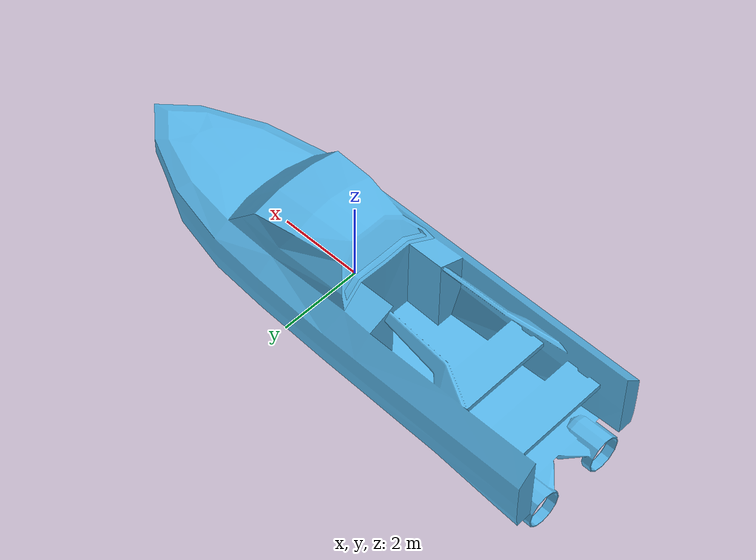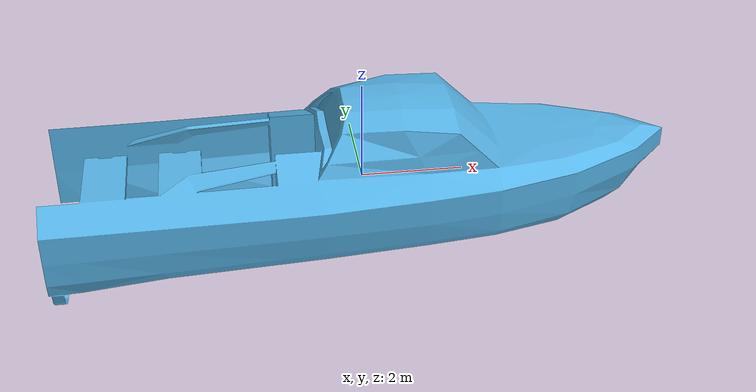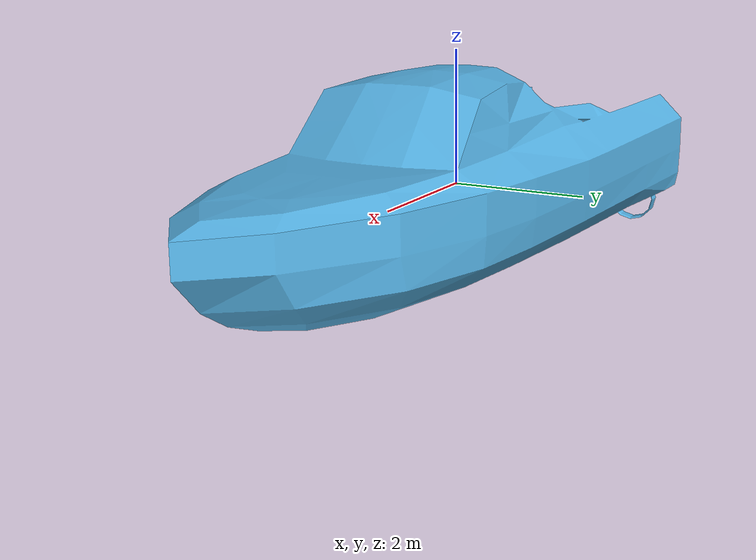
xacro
<?xml version="1.0"?>
<robot xmlns:xacro="http://ros.org/wiki/xacro" name="cora">

  <link name="base_link">
  </link>

  <joint name="dummy_joint" type="fixed">
    <parent link="base_link"/>
    <child link="dummy_link"/>
  </joint>

  <link name="dummy_link">
    <visual>
      <geometry>
        <mesh filename="package://cora_description/models/meshes/base_v1.dae"/>
      </geometry>
    </visual>

    <collision name="collision">
      <geometry>
        <box size="12.21 3.58 3.53" />
      </geometry>
    </collision>

    <!-- Numbers are from MeshLab -->
    <inertial>
      <origin xyz="0.458797 0.002028 0.234834" rpy="0 0 0" />
      <mass value="42.935"/>
      <inertia ixx="55.373356" ixy="0.245103" ixz="-21.590300"
                               iyy="341.188965" iyz="0.053122"
                                                izz="367.665375"/>
    </inertial>
  </link>

</robot>
